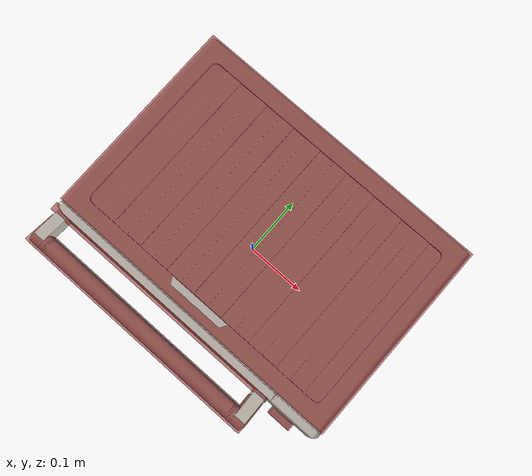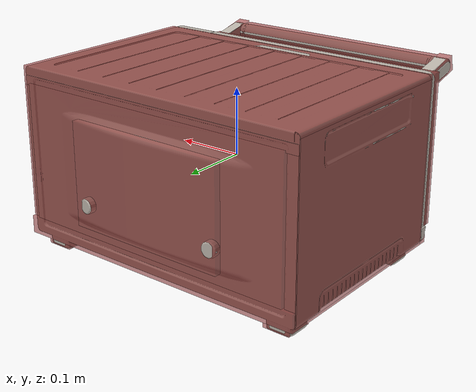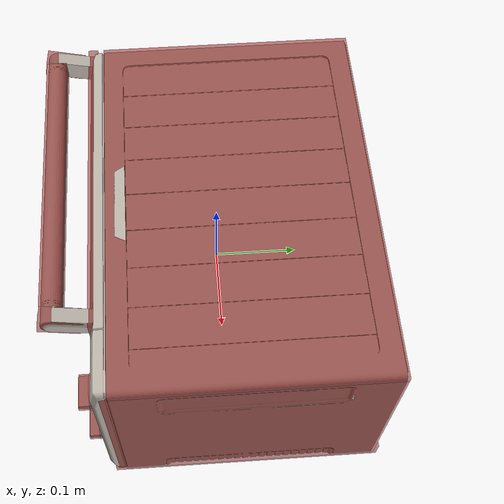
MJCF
<?xml version='1.0' encoding='UTF-8'?>
<mujoco model="model">
  <option timestep="0.002" gravity="0.0 0.0 -9.81"/>
  <compiler angle="radian"/>
  <asset>
    <mesh file="visuals/door.obj" name="door_vis"/>
    <mesh file="visuals/knob_temp.obj" name="knob_temp_vis"/>
    <mesh file="visuals/knob_time.obj" name="knob_time_vis"/>
    <mesh file="visuals/rack0.obj" name="rack0_vis"/>
    <mesh file="visuals/Body001.obj" name="Body001_vis"/>
    <mesh file="visuals/window.obj" name="window_vis"/>
    <texture file="visuals/T_BC001.png" name="Body001_material" type="2d"/>
    <material name="Body001_material" rgba="1 1 1 1.0" texture="Body001_material" shininess="0.1" specular="0.9"/>
    <texture file="visuals/T_BC001.png" name="door_material" type="2d"/>
    <material name="door_material" rgba="1 1 1 1.0" texture="door_material" shininess="0.1" specular="0.9"/>
    <material name="window_material" rgba="0.015459578484296799 0.015459578484296799 0.015459578484296799 0.75" shininess="0.1" specular="0.9"/>
    <texture file="visuals/T_BC001.png" name="knob_temp_material" type="2d"/>
    <material name="knob_temp_material" rgba="1 1 1 1.0" texture="knob_temp_material" shininess="0.1" specular="0.9"/>
    <texture file="visuals/T_BC001.png" name="knob_time_material" type="2d"/>
    <material name="knob_time_material" rgba="1 1 1 1.0" texture="knob_time_material" shininess="0.1" specular="0.9"/>
    <texture file="visuals/T_BC001.png" name="rack0_material" type="2d"/>
    <material name="rack0_material" rgba="1 1 1 1.0" texture="rack0_material" shininess="0.1" specular="0.9"/>
  </asset>
  <default>
    <default class="visual">
      <geom conaffinity="0" contype="0" group="1" type="mesh"/>
    </default>
    <default class="collision">
      <geom group="0" rgba="0.5 0 0 0.5"/>
    </default>
    <default class="spawn">
      <geom group="0" rgba="1 1 1 0.5" contype="0" conaffinity="0"/>
      <site group="0" rgba="1 1 1 0.5"/>
    </default>
    <default class="region">
      <geom group="1" conaffinity="0" contype="0" rgba="0 1 0 0"/>
    </default>
  </default>
  <worldbody>
    <body>
      <body name="object">
        <geom mesh="Body001_vis" type="mesh" solimp="0.998 0.998 0.001" solref="0.001 1" friction="0.95 0.3 0.1" class="visual" material="Body001_material"/>
        <geom class="collision" type="box" pos="-0.22704343 0.02735797 0.00406064" size="0.00845657754689455 0.1562059074640274 0.12157423049211502" quat="1.0 0.0 0.0 0.0"/>
        <geom class="collision" type="box" pos="0.19488229 0.02328577 0.00406064" size="0.04061771184206009 0.16027745604515076 0.12157423049211502" quat="1.0 0.0 0.0 0.0"/>
        <geom class="collision" type="box" pos="0.00006216 0.02735797 0.11879379" size="0.23543578386306763 0.1562086045742035 0.013556163758039474" quat="1.0 0.0 0.0 0.0"/>
        <geom class="collision" type="box" pos="0.00041001 0.02981214 -0.10894060" size="0.23508797585964203 0.15834209322929382 0.013261904940009117" quat="1.0 0.0 0.0 0.0"/>
        <geom class="collision" type="box" pos="0.00368712 0.16225262 -0.00334429" size="0.2200160026550293 0.024211786687374115 0.11152558028697968" quat="1.0 0.0 0.0 0.0"/>
        <geom class="collision" type="box" pos="0.19934714 -0.09830002 -0.13190042" size="0.02043869160115719 0.021270979195833206 0.009028535336256027" quat="1.0 0.0 0.0 0.0"/>
        <geom class="collision" type="box" pos="0.19934714 0.15012270 -0.13190042" size="0.020438658073544502 0.021270979195833206 0.009028535336256027" quat="1.0 0.0 0.0 0.0"/>
        <geom class="collision" type="box" pos="-0.19772932 0.15012270 -0.13190042" size="0.020438624545931816 0.021270979195833206 0.009028535336256027" quat="1.0 0.0 0.0 0.0"/>
        <geom class="collision" type="box" pos="-0.19772932 -0.09830002 -0.13190042" size="0.02043859101831913 0.021270979195833206 0.009028535336256027" quat="1.0 0.0 0.0 0.0"/>
        <geom class="collision" type="box" pos="0.00238112 0.18956755 -0.00073230" size="0.12391272932291031 0.007120063994079828 0.07707659900188446" quat="1.0 0.0 0.0 0.0"/>
        <geom class="collision" type="box" pos="0.00041001 -0.13543625 -0.11514940" size="0.235089972615242 0.0064723314717411995 0.007053126115351915" quat="1.0 0.0 0.0 0.0"/>
        <geom class="collision" type="box" pos="-0.21498555 0.00394717 0.00208765" size="0.0032480305526405573 0.11949707567691803 0.015204885974526405" quat="1.0 0.0 0.0 0.0"/>
        <geom class="collision" type="box" pos="-0.21498553 0.00394717 0.04690912" size="0.003248046152293682 0.11949707567691803 0.0191823560744524" quat="1.0 0.0 0.0 0.0"/>
        <geom class="collision" type="box" pos="-0.21498555 0.00394717 -0.03973218" size="0.003248031949624419 0.11949707567691803 0.015250112861394882" quat="1.0 0.0 0.0 0.0"/>
        <geom class="collision" type="box" pos="-0.21498553 0.00394717 -0.07942260" size="0.0032480477821081877 0.11949707567691803 0.016048239544034004" quat="1.0 0.0 0.0 0.0"/>
        <geom class="collision" type="box" pos="0.15231566 0.10340434 0.00208765" size="0.004900638945400715 0.02585107833147049 0.015204917639493942" quat="1.0 0.0 0.0 0.0"/>
        <geom class="collision" type="box" pos="0.15231565 0.10340434 0.04659606" size="0.0049006701447069645 0.02585107833147049 0.019816067069768906" quat="1.0 0.0 0.0 0.0"/>
        <geom class="collision" type="box" pos="0.15231565 0.10340434 -0.03977742" size="0.004900663625448942 0.02585107833147049 0.015204917639493942" quat="1.0 0.0 0.0 0.0"/>
        <geom class="collision" type="box" pos="0.15231565 0.10340434 -0.08026597" size="0.004900664556771517 0.02585107833147049 0.015204917639493942" quat="1.0 0.0 0.0 0.0"/>
        <geom class="collision" type="box" pos="0.15231566 -0.09194615 0.00208765" size="0.004900652915239334 0.02638694830238819 0.015204917639493942" quat="1.0 0.0 0.0 0.0"/>
        <geom class="collision" type="box" pos="0.15231565 -0.09194615 0.04659606" size="0.00490067433565855 0.026386935263872147 0.019816067069768906" quat="1.0 0.0 0.0 0.0"/>
        <geom class="collision" type="box" pos="0.15231566 -0.09194615 -0.03977742" size="0.004900652915239334 0.02638694830238819 0.015204917639493942" quat="1.0 0.0 0.0 0.0"/>
        <geom class="collision" type="box" pos="0.15231565 -0.09194615 -0.08026597" size="0.00490066921338439 0.02638694830238819 0.015204917639493942" quat="1.0 0.0 0.0 0.0"/>
        <body name="door">
          <joint axis="1.0 0.0 0.0" pos="-0.03919303 -0.14803638 -0.09615830" limited="true" name="door_joint" range="0.0 1.5007963267948966" type="hinge" damping="1" frictionloss="1" armature=".01" stiffness="1" springref="-0.5"/>
          <geom mesh="door_vis" type="mesh" solimp="0.998 0.998 0.001" solref="0.001 1" friction="0.95 0.3 0.1" class="visual" material="door_material"/>
          <geom class="collision" type="box" pos="-0.04116019 -0.14198755 0.01892460" size="0.1943398118019104 0.006128094159066677 0.11324569582939148" quat="1.0 0.0 0.0 0.0" name="door_main"/>
          <geom class="collision" type="box" pos="-0.21874493 -0.17744170 0.12687526" size="0.009599174372851849 0.023531947284936905 0.011573350057005882" quat="0.9916978478431702 -0.12859009206295013 -0.0 0.0"/>
          <geom class="collision" type="box" pos="0.14157176 -0.17744170 0.12687526" size="0.009599174372851849 0.023531947284936905 0.011573350057005882" quat="0.9916978478431702 -0.12859009206295013 -0.0 0.0"/>
          <geom class="collision" type="box" pos="-0.03859839 -0.18659458 0.12937678" size="0.16969816386699677 0.012113426811993122 0.012113467790186405" quat="1.0 0.0 0.0 0.0" name="door_handle_main"/>
          <body name="window">
            <geom mesh="window_vis" type="mesh" solimp="0.998 0.998 0.001" solref="0.001 1" friction="0.95 0.3 0.1" class="visual" material="window_material"/>
            <geom class="collision" type="box" pos="-0.03799054 -0.14181325 0.00886680" size="0.1620350033044815 0.0031526824459433556 0.07637986540794373" quat="1.0 0.0 0.0 0.0"/>
          </body>
        </body>
        <body name="knob_temp">
          <joint axis="0.0 1.0 0.0" pos="0.19671021 -0.15303466 0.05421991" limited="true" name="knob_temp_joint" range="0.0 5.410520681182422" type="hinge" damping="0.05" armature="1" frictionloss="0.75"/>
          <geom mesh="knob_temp_vis" type="mesh" solimp="0.998 0.998 0.001" solref="0.001 1" friction="0.95 0.3 0.1" class="visual" material="knob_temp_material"/>
          <geom class="collision" type="cylinder" pos="0.19671021 -0.15217239 0.05421991" size="0.020568156614899635 0.0019050710834562778" quat="0.7071067094802856 0.7071068286895752 0.0 0.0" friction="100 0.5 0.01"/>
          <geom class="collision" type="box" pos="0.19671021 -0.16071039 0.05421991" size="0.019587434828281403 0.006104517728090286 0.004412749316543341" quat="1.0 0.0 0.0 0.0" name="knob_temp_main" friction="100 0.5 0.01"/>
        </body>
        <body name="knob_time">
          <joint axis="0.0 1.0 0.0" pos="0.19671021 -0.15303466 -0.04663604" limited="true" name="knob_time_joint" range="0.0 4.71238898038469" type="hinge" damping="0.05" armature="1" frictionloss="0.75"/>
          <geom mesh="knob_time_vis" type="mesh" solimp="0.998 0.998 0.001" solref="0.001 1" friction="0.95 0.3 0.1" class="visual" material="knob_time_material"/>
          <geom class="collision" type="cylinder" pos="0.19671021 -0.15217239 -0.04663604" size="0.020568156614899635 0.0022563235834240913" quat="0.7071067094802856 0.7071068286895752 0.0 0.0" friction="100 0.5 0.01"/>
          <geom class="collision" type="box" pos="0.19671021 -0.16071039 -0.04663604" size="0.019587434828281403 0.006104519125074148 0.004412749316543341" quat="1.0 0.0 0.0 0.0" name="knob_time_main" friction="100 0.5 0.01"/>
        </body>
        <body name="rack0">
          <geom class="region" name="reg_rack0" type="box" pos="-0.032193605 0.00402185 0.043194735" size="0.178690945 0.10667224 0.061301455000000005"/>
          <joint axis="0.0 -1.0 0.0" pos="-0.03222913 0.00416407 -0.02035739" limited="true" name="rack0_joint" range="0.0 0.18" type="slide" damping="1" frictionloss="1" armature=".01" stiffness="0.05"/>
          <geom mesh="rack0_vis" type="mesh" solimp="0.998 0.998 0.001" solref="0.001 1" friction="0.95 0.3 0.1" class="visual" material="rack0_material"/>
          <geom class="collision" type="box" pos="-0.03222912 0.00416407 -0.02036574" size="0.18294009566307068 0.10695970058441162 0.0017083256971091032" quat="1.0 0.0 0.0 0.0"/>
        </body>
        <geom class="region" name="reg_int" type="box" pos="-0.03227036 0.005429755000000001 0.004366584999999999" size="0.17860636 0.131095565 0.09728663500000001"/>
        <geom class="region" name="reg_main" type="box" pos="-5.0000000112460086e-09 0.025089620000000007 -0.004289500000000002" size="0.236500005 0.17420526 0.13763945"/>
      </body>
    </body>
  </worldbody>
  <actuator>
    <motor name="door_joint_actuator" joint="door_joint" gear="50"/>
    <motor name="knob_temp_joint_actuator" joint="knob_temp_joint" gear="50"/>
    <motor name="knob_time_joint_actuator" joint="knob_time_joint" gear="50"/>
    <motor name="rack0_joint_actuator" joint="rack0_joint" gear="50"/>
  </actuator>
</mujoco>
